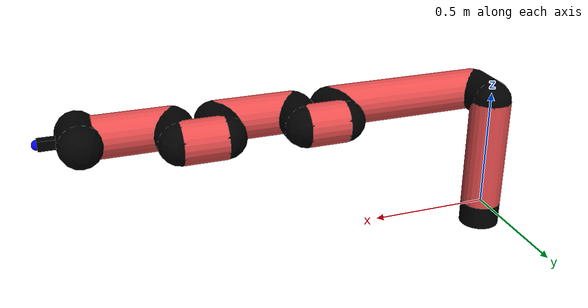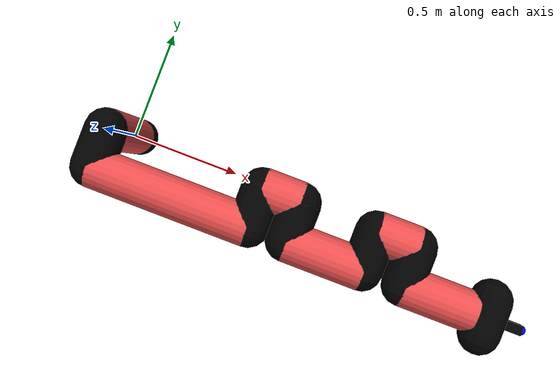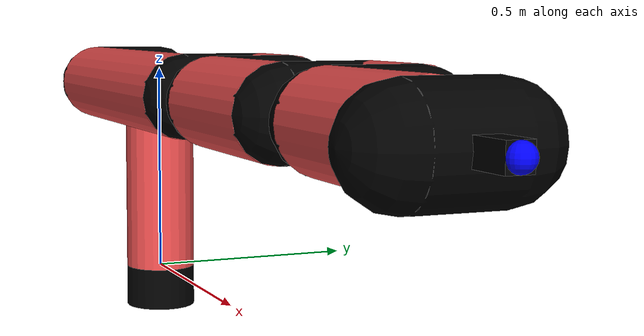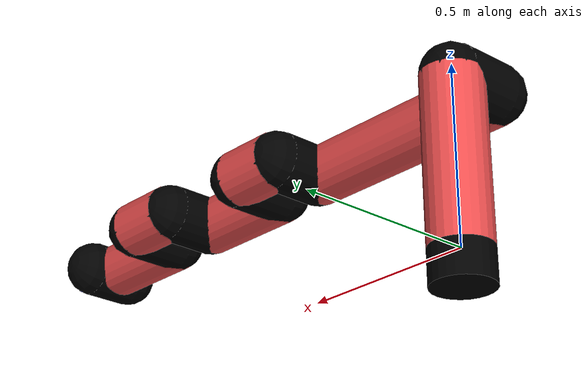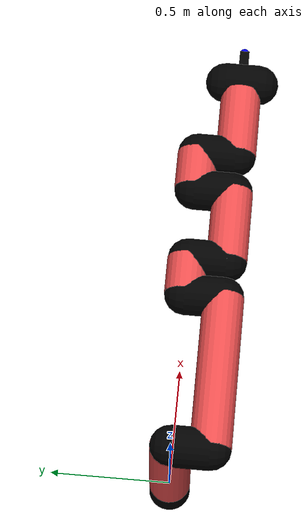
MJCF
<mujoco model="manipulator">
		<compiler angle="degree" coordinate="local" inertiafromgeom="auto" meshdir="meshes/"/>
		<option gravity="0 0 0" integrator="RK4" iterations="30" timestep="0.01"/>

		<default>
		<joint armature="1" limited="true" stiffness="10" damping="15" frictionloss="5.0"/>
		<geom conaffinity="1" condim="3" contype="1" friction=".5 .1 .1" margin="0.002"/>
		<motor ctrllimited="true"/>
		<position ctrllimited="true"/>
		</default>

		<asset>
		<texture builtin="gradient" height="100" rgb1="1.0 1.0 1.0" rgb2="1.0 1.0 1.0" type="skybox" width="100"/>
		<texture builtin="flat" height="32" name="arm_tex" rgb1="0.9 0.3 0.3" type="2d" width="32"/>
		<texture builtin="flat" height="32" name="gripper_tex" rgb1="0.0 0.0 0.0" type="cube" width="32"/>

		<material name="arm_mat" shininess="0.1" specular="0.1" texture="arm_tex"/>
		<material name="gripper_mat" shininess="1" specular="1" texture="gripper_tex"/>
		</asset>

		<worldbody>
		<light cutoff="45" diffuse=".8 .8 .8" dir="0 0.16 -1" directional="false" name="light" pos="0 -2.0 8.0" specular="0.3 0.3 0.3"/>

		<body name="base_link" pos="0 0 -0.1">
		<geom fromto="0 0 0 0 0 0.1" material="arm_mat" name="base_link" rgba="0.0 0.0 0.0 1" size="0.085" type="cylinder"/>
		</body>

		<body name="l1" pos="0 0 0">
<geom fromto="0 0 0 0 0 0.47" material="arm_mat" name="l1" rgba="0.9 0.3 0.3 1" size="0.085" type="cylinder"/>
<geom fromto="0 0 0.47 0 -0.16 0.47" material="arm_mat" name="l1_ex" rgba="0.0 0.0 0.0 1" size="0.085" type="capsule"/>
<joint axis="0 0 1" name="j1" pos="0 0 0" range="-90 90" damping="31.63" frictionloss="9.89"/>

<body name="l2" pos="0 -0.16 0.47">
<geom fromto="0 0 0 0.66 0 0" material="arm_mat" name="l2" rgba="0.9 0.3 0.3 1" size="0.085" type="cylinder"/>
<geom fromto="0.66 0 0 0.66 0.16 0" material="arm_mat" name="l2_ex" rgba="0.0 0.0 0.0 1" size="0.085" type="capsule"/>
<joint axis="0.0 1.0 0.0" name="j2" pos="0 0 0" range="-90 60" damping="32.54" frictionloss="8.6"/>

<body name="l3" pos="0.66 0.16 0">
<geom fromto="0 0 0 0.16 0 0" material="arm_mat" name="l3" rgba="0.9 0.3 0.3 1" size="0.085" type="cylinder"/>
<geom fromto="0.16 0 0 0.16 -0.16 0" material="arm_mat" name="l3_ex" rgba="0.0 0.0 0.0 1" size="0.085" type="capsule"/>
<joint axis="0.0 1.0 0.0" name="j3" pos="0 0 0" range="-30 60" damping="41.07" frictionloss="5.42"/>

<body name="l4" pos="0.16 -0.16 0">
<geom fromto="0 0 0 0.32 0 0" material="arm_mat" name="l4" rgba="0.9 0.3 0.3 1" size="0.085" type="cylinder"/>
<geom fromto="0.32 0 0 0.32 0.16 0" material="arm_mat" name="l4_ex" rgba="0.0 0.0 0.0 1" size="0.085" type="capsule"/>
<joint axis="0.0 1.0 0.0" name="j4" pos="0 0 0" range="-30 60" damping="46.74" frictionloss="13.13"/>

<body name="l5" pos="0.32 0.16 0">
<geom fromto="0 0 0 0.17 0 0" material="arm_mat" name="l5" rgba="0.9 0.3 0.3 1" size="0.085" type="cylinder"/>
<geom fromto="0.17 0 0 0.17 -0.16 0" material="arm_mat" name="l5_ex" rgba="0.0 0.0 0.0 1" size="0.085" type="capsule"/>
<joint axis="0.0 1.0 0.0" name="j5" pos="0 0 0" range="-30 60" damping="30.01" frictionloss="10.87"/>

<body name="l6" pos="0.17 -0.16 0">
<geom fromto="0 0 0 0.3 0 0" material="arm_mat" name="l6" rgba="0.9 0.3 0.3 1" size="0.085" type="cylinder"/>
<joint axis="0.0 1.0 0.0" name="j6" pos="0 0 0" range="-30 60" damping="24.85" frictionloss="10.34"/>

<body name="gripper" pos="0.3 0 0">
<geom fromto="0.05 -0.07 0 0.05 0.07 0" material="gripper_mat" name="gripper" rgba="0.0 0.0 0.0 1" size="0.085" type="capsule"/><joint axis="1 0 0" name="j7" pos="0 0 0" range="-90 90" damping="15" frictionloss="5.0"/><body name="finger" pos="0.1 0 0">
<geom fromto="0 0.0 0 0.1 0.0 0" material="gripper_mat" name="finger" rgba="0.0 0.0 0.0 1" size="0.020 0.06 0.06" type="box"/>
</body>
<site name="current" pos="0.2 0. 0.0" rgba="0. 0. 1.0 1" size="0.02" type="sphere"/>
</body>
</body>
</body>
</body>
</body>
</body>
</body>
</worldbody>
<actuator>
<motor ctrllimited="true" ctrlrange="-1.0 1.0" joint="j1" gear="114.15"/>
<motor ctrllimited="true" ctrlrange="-1.0 1.0" joint="j2" gear="59.27"/>
<motor ctrllimited="true" ctrlrange="-1.0 1.0" joint="j3" gear="103.74"/>
<motor ctrllimited="true" ctrlrange="-1.0 1.0" joint="j4" gear="125.46"/>
<motor ctrllimited="true" ctrlrange="-1.0 1.0" joint="j5" gear="61.88"/>
<motor ctrllimited="true" ctrlrange="-1.0 1.0" joint="j6" gear="32.08"/>
<motor ctrllimited="true" ctrlrange="-1.0 1.0" joint="j7" gear="80"/>
</actuator>
</mujoco>
